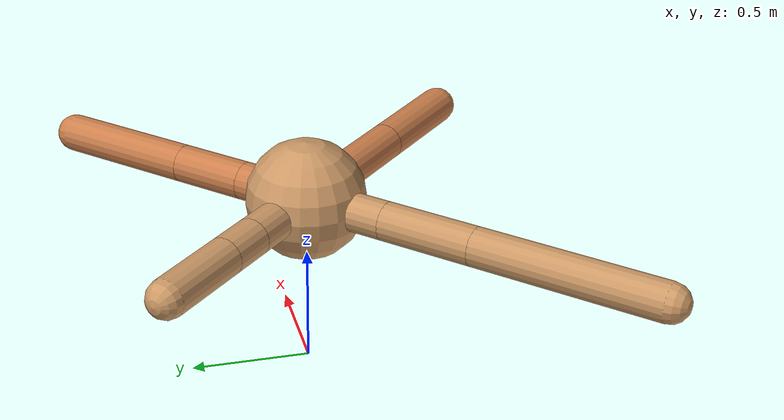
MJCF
<mujoco model="ant">
  <compiler angle="degree" coordinate="local" inertiafromgeom="true" />
  <option integrator="RK4" timestep="0.01" />
  <custom>
    <numeric data="0.0 0.0 0.55 1.0 0.0 0.0 0.0 0.0 1.0 0.0 -1.0 0.0 -1.0 0.0 1.0" name="init_qpos" />
  </custom>
  <default>
    <joint armature="1" damping="1" limited="true" />
    <geom conaffinity="0" condim="3" density="5.0" friction="1.5 0.1 0.1" margin="0.01" rgba="0.8 0.6 0.4 1" />
  </default>
  <worldbody>
    <body name="torso" pos="0 0 0.75">
      <geom name="torso_geom" pos="0 0 0" size="0.25" type="sphere" />

      <body name="front_left_leg" pos="0 0 0">
        <geom fromto="0.0 0.0 0.0 0.21502396973208318 0.21502396973208318 0.0" name="aux_1_geom" size="0.08" type="capsule" rgba=".8 .5 .3 1" />
        <body name="aux_1" pos="0.21502396973208318 0.21502396973208318 0.0">
          <joint axis="0 0 1" name="hip_1" pos="0.0 0.0 0.0" range="-40 40" type="hinge" />
          <geom fromto="0.0 0.0 0.0 0.2210972687121342 0.2210972687121342 0.0" name="left_leg_geom" size="0.08" type="capsule" rgba=".8 .5 .3 1" />
          <body pos="0.2210972687121342 0.2210972687121342 0.0" name="front_left_foot">
            <joint axis="-1 1 0" name="ankle_1" pos="0.0 0.0 0.0" range="30 100" type="hinge" />
            <geom fromto="0.0 0.0 0.0 0.4226467497528689 0.4226467497528689 0.0" name="left_ankle_geom" size="0.08" type="capsule" rgba=".8 .5 .3 1" />
          </body>
        </body>
      </body>
      <body name="front_right_leg" pos="0 0 0">
        <geom fromto="0.0 0.0 0.0 -0.2714241451292159 0.2714241451292159 0.0" name="aux_2_geom" size="0.08" type="capsule" />
        <body name="aux_2" pos="-0.2714241451292159 0.2714241451292159 0.0">
          <joint axis="0 0 1" name="hip_2" pos="0.0 0.0 0.0" range="-40 40" type="hinge" />
          <geom fromto="0.0 0.0 0.0 -0.1283589569962428 0.1283589569962428 0.0" name="right_leg_geom" size="0.08" type="capsule" />
          <body pos="-0.1283589569962428 0.1283589569962428 0.0" name="front_right_foot">
            <joint axis="1 1 0" name="ankle_2" pos="0.0 0.0 0.0" range="-100 -30" type="hinge" />
            <geom fromto="0.0 0.0 0.0 -0.2547955056389573 0.2547955056389573 0.0" name="right_ankle_geom" size="0.08" type="capsule" />
          </body>
        </body>
      </body>
      <body name="left_back_leg" pos="0 0 0">
        <geom fromto="0.0 0.0 0.0 -0.2637906936205799 -0.2637906936205799 0.0" name="aux_3_geom" size="0.08" type="capsule" />
        <body name="aux_3" pos="-0.2637906936205799 -0.2637906936205799 0.0">
          <joint axis="0 0 1" name="hip_3" pos="0.0 0.0 0.0" range="-40 40" type="hinge" />
          <geom fromto="0.0 0.0 0.0 -0.27730342804700875 -0.27730342804700875 0.0" name="back_leg_geom" size="0.08" type="capsule" />
          <body pos="-0.27730342804700875 -0.27730342804700875 0.0" name="left_back_foot">
            <joint axis="-1 1 0" name="ankle_3" pos="0.0 0.0 0.0" range="-100 -30" type="hinge" />
            <geom fromto="0.0 0.0 0.0 -0.5548270031274324 -0.5548270031274324 0.0" name="third_ankle_geom" size="0.08" type="capsule" />
          </body>
        </body>
      </body>
      <body name="right_back_leg" pos="0 0 0">
        <geom fromto="0.0 0.0 0.0 0.20069321786185315 -0.20069321786185315 0.0" name="aux_4_geom" size="0.08" type="capsule" rgba=".8 .5 .3 1" />
        <body name="aux_4" pos="0.20069321786185315 -0.20069321786185315 0.0">
          <joint axis="0 0 1" name="hip_4" pos="0.0 0.0 0.0" range="-40 40" type="hinge" />
          <geom fromto="0.0 0.0 0.0 0.24962962492830787 -0.24962962492830787 0.0" name="rightback_leg_geom" size="0.08" type="capsule" rgba=".8 .5 .3 1" />
          <body pos="0.24962962492830787 -0.24962962492830787 0.0" name="right_back_foot">
            <joint axis="1 1 0" name="ankle_4" pos="0.0 0.0 0.0" range="30 100" type="hinge" />
            <geom fromto="0.0 0.0 0.0 0.3321714728807765 -0.3321714728807765 0.0" name="fourth_ankle_geom" size="0.08" type="capsule" rgba=".8 .5 .3 1" />
          </body>
        </body>
      </body>
    </body>
  </worldbody>
  <actuator>
    <motor ctrllimited="true" ctrlrange="-1.0 1.0" joint="hip_4" gear="150" />
    <motor ctrllimited="true" ctrlrange="-1.0 1.0" joint="ankle_4" gear="150" />
    <motor ctrllimited="true" ctrlrange="-1.0 1.0" joint="hip_1" gear="150" />
    <motor ctrllimited="true" ctrlrange="-1.0 1.0" joint="ankle_1" gear="150" />
    <motor ctrllimited="true" ctrlrange="-1.0 1.0" joint="hip_2" gear="150" />
    <motor ctrllimited="true" ctrlrange="-1.0 1.0" joint="ankle_2" gear="150" />
    <motor ctrllimited="true" ctrlrange="-1.0 1.0" joint="hip_3" gear="150" />
    <motor ctrllimited="true" ctrlrange="-1.0 1.0" joint="ankle_3" gear="150" />
  </actuator>
</mujoco>
